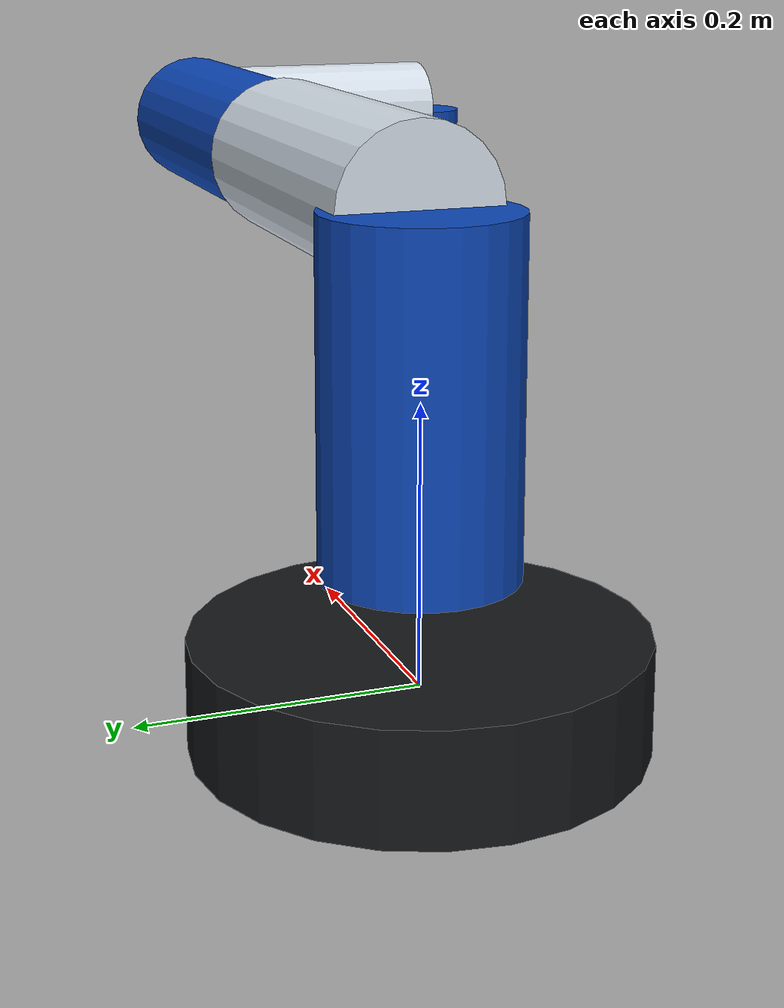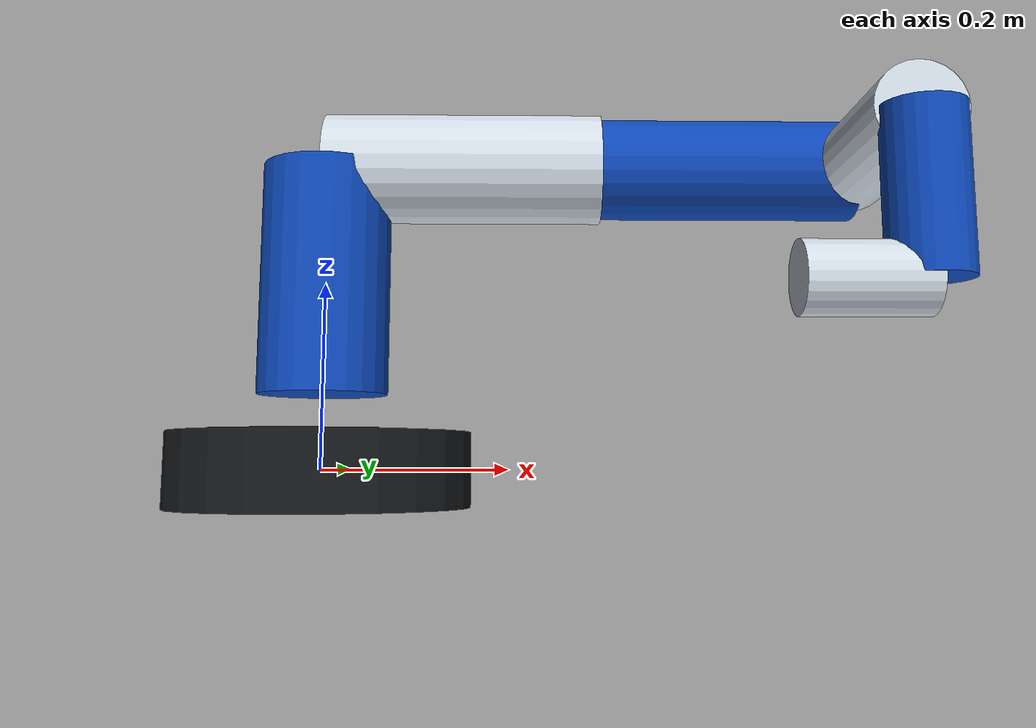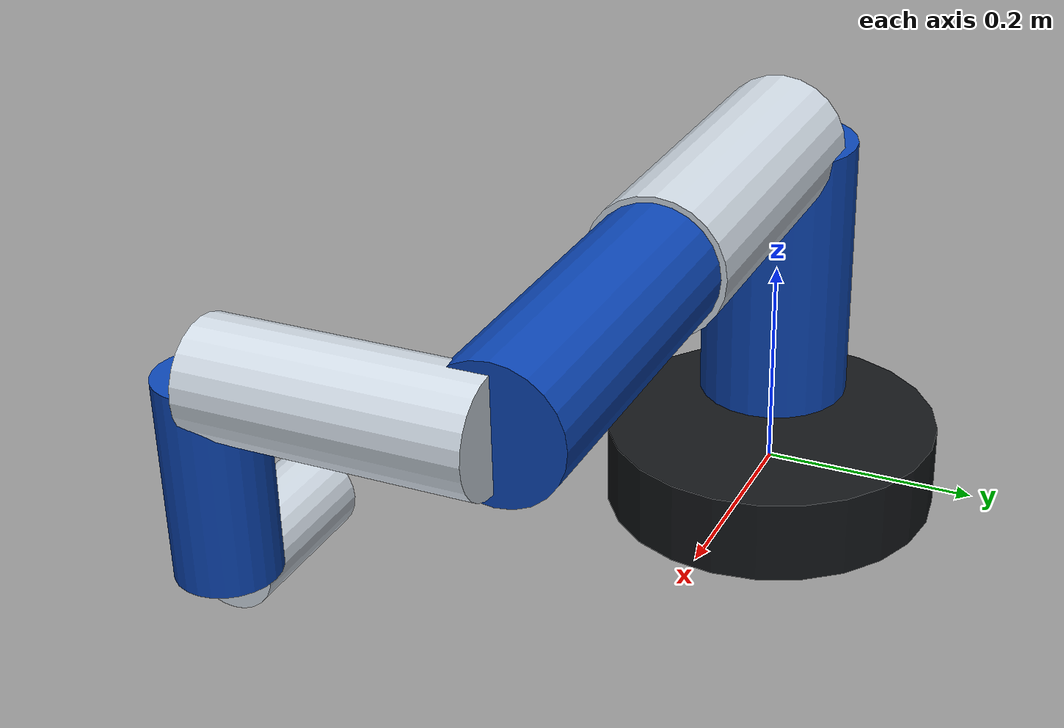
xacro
<?xml version="1.0"?>
<robot name="smri3" xmlns:xacro="http://www.ros.org/wiki/xacro">
  <xacro:arg name="robot_ip" default=""/>
  <xacro:arg name="hardware_backend" default="real"/>
  <xacro:arg name="log_passthrough_commands" default="false"/>

  <xacro:include filename="$(find smrcore_description)/urdf/materials.xacro"/>
  <xacro:include filename="$(find smrcore_description)/urdf/smrcore_macro.xacro"/>
  <xacro:include filename="$(find smrcore_description)/urdf/smri3.ros2_control.xacro"/>

  <link name="base_link">
    <visual>
      <geometry>
        <cylinder radius="0.16" length="0.08"/>
      </geometry>
      <material name="smrcore_dark"/>
    </visual>
    <collision>
      <geometry>
        <cylinder radius="0.16" length="0.08"/>
      </geometry>
    </collision>
    <inertial>
      <mass value="5.0"/>
      <inertia ixx="0.05" ixy="0.0" ixz="0.0" iyy="0.05" iyz="0.0" izz="0.05"/>
    </inertial>
  </link>

  <xacro:smrcore_link name="link1" radius="0.07" length="0.25" color="smrcore_blue"/>
  <xacro:smrcore_link name="link2" radius="0.06" length="0.30" color="smrcore_light"/>
  <xacro:smrcore_link name="link3" radius="0.055" length="0.28" color="smrcore_blue"/>
  <xacro:smrcore_link name="link4" radius="0.045" length="0.22" color="smrcore_light"/>
  <xacro:smrcore_link name="link5" radius="0.04" length="0.16" color="smrcore_blue"/>
  <xacro:smrcore_link name="link6" radius="0.035" length="0.12" color="smrcore_light"/>
  <link name="tool0"/>

  <joint name="base_joint" type="revolute">
    <parent link="base_link"/>
    <child link="link1"/>
    <origin xyz="0 0 0.08" rpy="0 0 0"/>
    <axis xyz="0 0 1"/>
    <limit lower="-6.283185307" upper="6.283185307" effort="200" velocity="3.14"/>
  </joint>
  <joint name="shoulder_joint" type="revolute">
    <parent link="link1"/>
    <child link="link2"/>
    <origin xyz="0 0 0.25" rpy="0 1.570796327 0"/>
    <axis xyz="0 1 0"/>
    <limit lower="-6.283185307" upper="6.283185307" effort="200" velocity="3.14"/>
  </joint>
  <joint name="elbow_joint" type="revolute">
    <parent link="link2"/>
    <child link="link3"/>
    <origin xyz="0 0 0.30" rpy="0 0 0"/>
    <axis xyz="0 1 0"/>
    <limit lower="-6.283185307" upper="6.283185307" effort="200" velocity="3.14"/>
  </joint>
  <joint name="wrist1_joint" type="revolute">
    <parent link="link3"/>
    <child link="link4"/>
    <origin xyz="0 0 0.28" rpy="1.570796327 0 0"/>
    <axis xyz="1 0 0"/>
    <limit lower="-6.283185307" upper="6.283185307" effort="120" velocity="3.14"/>
  </joint>
  <joint name="wrist2_joint" type="revolute">
    <parent link="link4"/>
    <child link="link5"/>
    <origin xyz="0 0 0.22" rpy="0 1.570796327 0"/>
    <axis xyz="0 1 0"/>
    <limit lower="-6.283185307" upper="6.283185307" effort="120" velocity="3.14"/>
  </joint>
  <joint name="wrist3_joint" type="revolute">
    <parent link="link5"/>
    <child link="link6"/>
    <origin xyz="0 0 0.16" rpy="1.570796327 0 0"/>
    <axis xyz="1 0 0"/>
    <limit lower="-6.283185307" upper="6.283185307" effort="80" velocity="3.14"/>
  </joint>
  <joint name="tool0_fixed" type="fixed">
    <parent link="link6"/>
    <child link="tool0"/>
    <origin xyz="0 0 0.12" rpy="0 0 0"/>
  </joint>

  <xacro:smri3_ros2_control robot_ip="$(arg robot_ip)" hardware_backend="$(arg hardware_backend)" log_passthrough_commands="$(arg log_passthrough_commands)"/>
</robot>

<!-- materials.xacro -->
<robot xmlns:xacro="http://www.ros.org/wiki/xacro">
  <material name="smrcore_dark">
    <color rgba="0.08 0.09 0.10 1.0"/>
  </material>
  <material name="smrcore_blue">
    <color rgba="0.05 0.28 0.72 1.0"/>
  </material>
  <material name="smrcore_light">
    <color rgba="0.82 0.86 0.90 1.0"/>
  </material>
</robot>

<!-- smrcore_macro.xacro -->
<robot xmlns:xacro="http://www.ros.org/wiki/xacro">
  <xacro:macro name="smrcore_link" params="name radius length color">
    <link name="${name}">
      <visual>
        <origin xyz="0 0 ${length / 2.0}" rpy="0 0 0"/>
        <geometry>
          <cylinder radius="${radius}" length="${length}"/>
        </geometry>
        <material name="${color}"/>
      </visual>
      <collision>
        <origin xyz="0 0 ${length / 2.0}" rpy="0 0 0"/>
        <geometry>
          <cylinder radius="${radius}" length="${length}"/>
        </geometry>
      </collision>
      <inertial>
        <origin xyz="0 0 ${length / 2.0}" rpy="0 0 0"/>
        <mass value="1.0"/>
        <inertia ixx="0.01" ixy="0.0" ixz="0.0" iyy="0.01" iyz="0.0" izz="0.01"/>
      </inertial>
    </link>
  </xacro:macro>
</robot>
